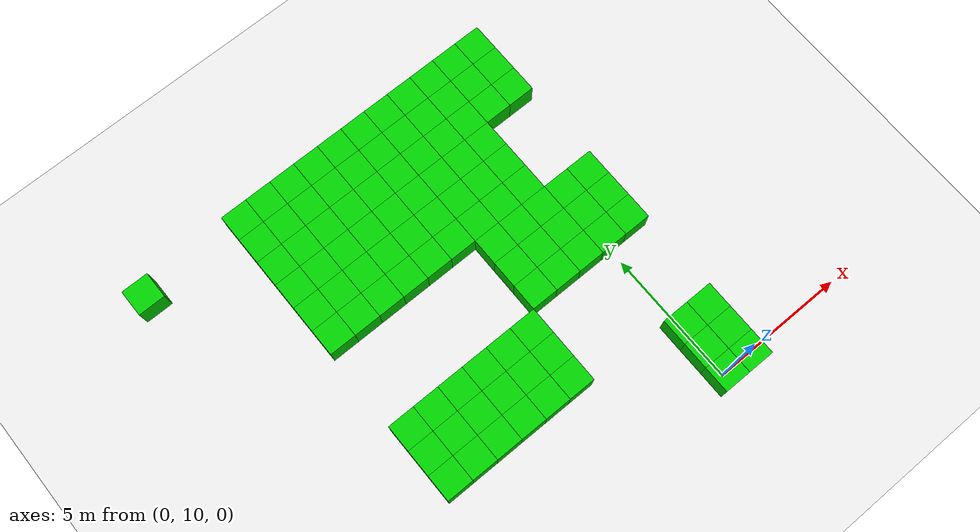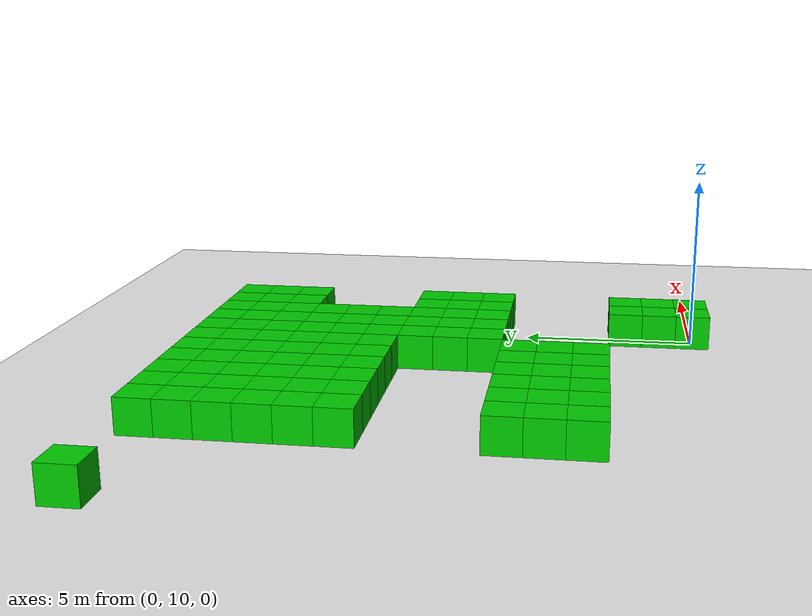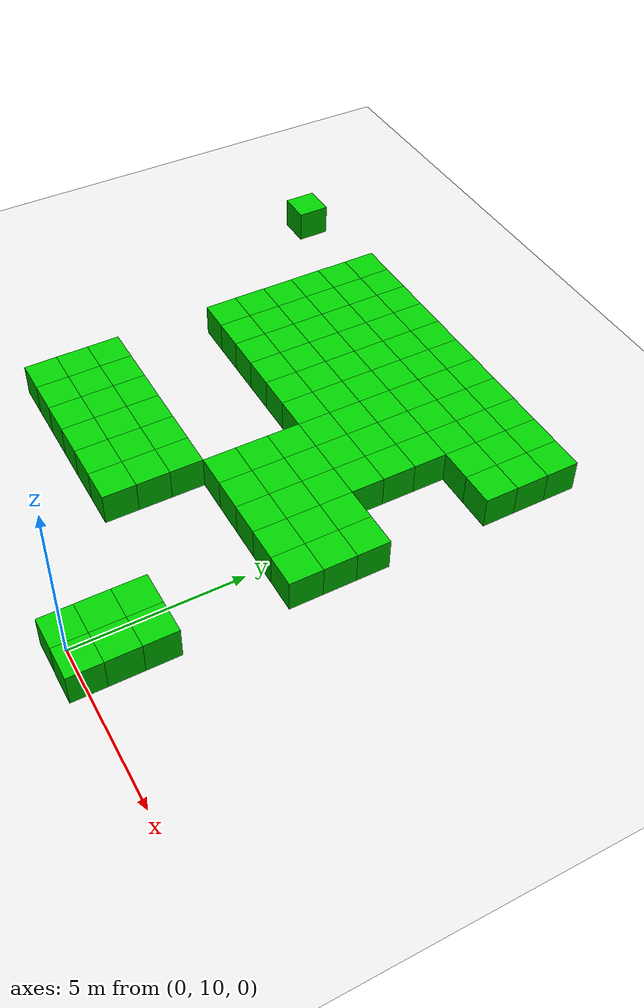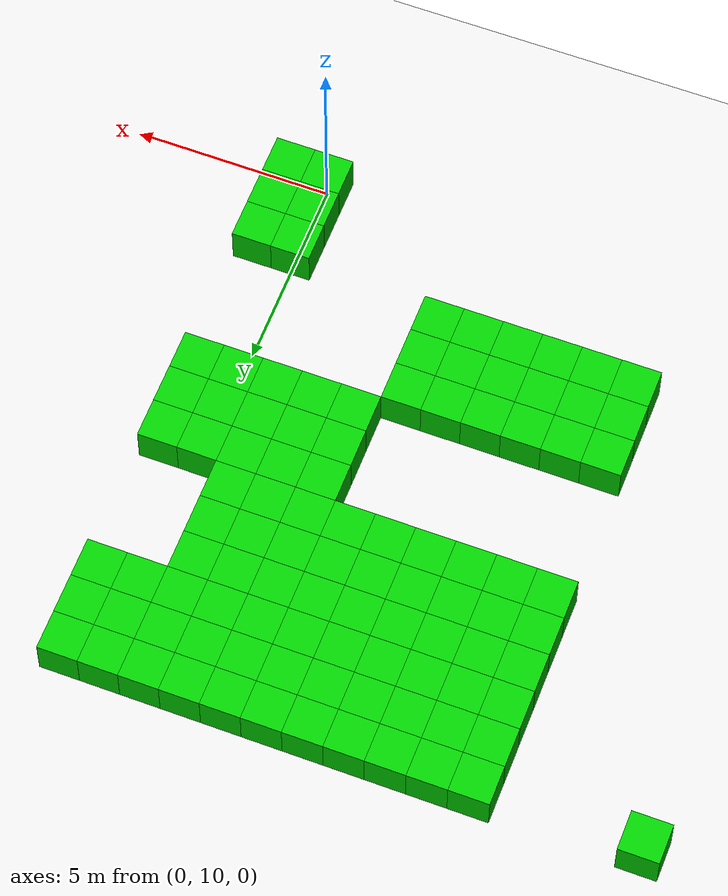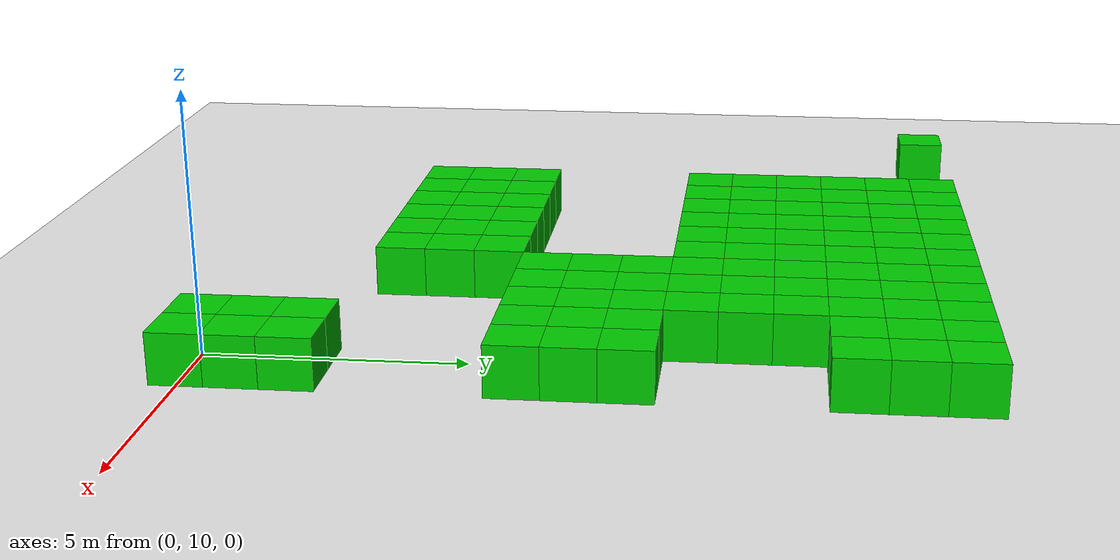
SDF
<sdf version="1.6">
 <world name="generated_maze">
  <model name="ground_plane">
   <static>true</static>
   <link name="link">
    <collision name="collision">
     <geometry><plane><normal>0 0 1</normal><size>100 100</size></plane></geometry>
    </collision>
    <visual name="visual">
     <geometry><plane><normal>0 0 1</normal><size>100 100</size></plane></geometry>
     <material>
      <ambient>0.9 0.9 0.9 1</ambient>
      <diffuse>0.9 0.9 0.9 1</diffuse>
      <specular>0.3 0.3 0.3 1</specular>
     </material>
    </visual>
   </link>
  </model>
  <model name="wall_0_11">
   <static>true</static>
   <pose>-13 24 0.5 0 0 0</pose>
   <link name="link">
    <collision name="collision"><geometry><box><size>1 1 1</size></box></geometry></collision>
    <visual name="visual">
     <geometry><box><size>1 1 1</size></box></geometry>
     <material>
      <ambient>0.0 0.8 0.0 1</ambient>
      <diffuse>0.0 0.8 0.0 1</diffuse>
      <specular>0.1 0.1 0.1 1</specular>
     </material>
    </visual>
   </link>
  </model>
  <model name="wall_0_15">
   <static>true</static>
   <pose>-9 24 0.5 0 0 0</pose>
   <link name="link">
    <collision name="collision"><geometry><box><size>1 1 1</size></box></geometry></collision>
    <visual name="visual">
     <geometry><box><size>1 1 1</size></box></geometry>
     <material>
      <ambient>0.0 0.8 0.0 1</ambient>
      <diffuse>0.0 0.8 0.0 1</diffuse>
      <specular>0.1 0.1 0.1 1</specular>
     </material>
    </visual>
   </link>
  </model>
  <model name="wall_0_16">
   <static>true</static>
   <pose>-8 24 0.5 0 0 0</pose>
   <link name="link">
    <collision name="collision"><geometry><box><size>1 1 1</size></box></geometry></collision>
    <visual name="visual">
     <geometry><box><size>1 1 1</size></box></geometry>
     <material>
      <ambient>0.0 0.8 0.0 1</ambient>
      <diffuse>0.0 0.8 0.0 1</diffuse>
      <specular>0.1 0.1 0.1 1</specular>
     </material>
    </visual>
   </link>
  </model>
  <model name="wall_0_17">
   <static>true</static>
   <pose>-7 24 0.5 0 0 0</pose>
   <link name="link">
    <collision name="collision"><geometry><box><size>1 1 1</size></box></geometry></collision>
    <visual name="visual">
     <geometry><box><size>1 1 1</size></box></geometry>
     <material>
      <ambient>0.0 0.8 0.0 1</ambient>
      <diffuse>0.0 0.8 0.0 1</diffuse>
      <specular>0.1 0.1 0.1 1</specular>
     </material>
    </visual>
   </link>
  </model>
  <model name="wall_0_18">
   <static>true</static>
   <pose>-6 24 0.5 0 0 0</pose>
   <link name="link">
    <collision name="collision"><geometry><box><size>1 1 1</size></box></geometry></collision>
    <visual name="visual">
     <geometry><box><size>1 1 1</size></box></geometry>
     <material>
      <ambient>0.0 0.8 0.0 1</ambient>
      <diffuse>0.0 0.8 0.0 1</diffuse>
      <specular>0.1 0.1 0.1 1</specular>
     </material>
    </visual>
   </link>
  </model>
  <model name="wall_0_19">
   <static>true</static>
   <pose>-5 24 0.5 0 0 0</pose>
   <link name="link">
    <collision name="collision"><geometry><box><size>1 1 1</size></box></geometry></collision>
    <visual name="visual">
     <geometry><box><size>1 1 1</size></box></geometry>
     <material>
      <ambient>0.0 0.8 0.0 1</ambient>
      <diffuse>0.0 0.8 0.0 1</diffuse>
      <specular>0.1 0.1 0.1 1</specular>
     </material>
    </visual>
   </link>
  </model>
  <model name="wall_0_20">
   <static>true</static>
   <pose>-4 24 0.5 0 0 0</pose>
   <link name="link">
    <collision name="collision"><geometry><box><size>1 1 1</size></box></geometry></collision>
    <visual name="visual">
     <geometry><box><size>1 1 1</size></box></geometry>
     <material>
      <ambient>0.0 0.8 0.0 1</ambient>
      <diffuse>0.0 0.8 0.0 1</diffuse>
      <specular>0.1 0.1 0.1 1</specular>
     </material>
    </visual>
   </link>
  </model>
  <model name="wall_0_21">
   <static>true</static>
   <pose>-3 24 0.5 0 0 0</pose>
   <link name="link">
    <collision name="collision"><geometry><box><size>1 1 1</size></box></geometry></collision>
    <visual name="visual">
     <geometry><box><size>1 1 1</size></box></geometry>
     <material>
      <ambient>0.0 0.8 0.0 1</ambient>
      <diffuse>0.0 0.8 0.0 1</diffuse>
      <specular>0.1 0.1 0.1 1</specular>
     </material>
    </visual>
   </link>
  </model>
  <model name="wall_0_22">
   <static>true</static>
   <pose>-2 24 0.5 0 0 0</pose>
   <link name="link">
    <collision name="collision"><geometry><box><size>1 1 1</size></box></geometry></collision>
    <visual name="visual">
     <geometry><box><size>1 1 1</size></box></geometry>
     <material>
      <ambient>0.0 0.8 0.0 1</ambient>
      <diffuse>0.0 0.8 0.0 1</diffuse>
      <specular>0.1 0.1 0.1 1</specular>
     </material>
    </visual>
   </link>
  </model>
  <model name="wall_0_23">
   <static>true</static>
   <pose>-1 24 0.5 0 0 0</pose>
   <link name="link">
    <collision name="collision"><geometry><box><size>1 1 1</size></box></geometry></collision>
    <visual name="visual">
     <geometry><box><size>1 1 1</size></box></geometry>
     <material>
      <ambient>0.0 0.8 0.0 1</ambient>
      <diffuse>0.0 0.8 0.0 1</diffuse>
      <specular>0.1 0.1 0.1 1</specular>
     </material>
    </visual>
   </link>
  </model>
  <model name="wall_0_24">
   <static>true</static>
   <pose>0 24 0.5 0 0 0</pose>
   <link name="link">
    <collision name="collision"><geometry><box><size>1 1 1</size></box></geometry></collision>
    <visual name="visual">
     <geometry><box><size>1 1 1</size></box></geometry>
     <material>
      <ambient>0.0 0.8 0.0 1</ambient>
      <diffuse>0.0 0.8 0.0 1</diffuse>
      <specular>0.1 0.1 0.1 1</specular>
     </material>
    </visual>
   </link>
  </model>
  <model name="wall_0_25">
   <static>true</static>
   <pose>1 24 0.5 0 0 0</pose>
   <link name="link">
    <collision name="collision"><geometry><box><size>1 1 1</size></box></geometry></collision>
    <visual name="visual">
     <geometry><box><size>1 1 1</size></box></geometry>
     <material>
      <ambient>0.0 0.8 0.0 1</ambient>
      <diffuse>0.0 0.8 0.0 1</diffuse>
      <specular>0.1 0.1 0.1 1</specular>
     </material>
    </visual>
   </link>
  </model>
  <model name="wall_1_15">
   <static>true</static>
   <pose>-9 23 0.5 0 0 0</pose>
   <link name="link">
    <collision name="collision"><geometry><box><size>1 1 1</size></box></geometry></collision>
    <visual name="visual">
     <geometry><box><size>1 1 1</size></box></geometry>
     <material>
      <ambient>0.0 0.8 0.0 1</ambient>
      <diffuse>0.0 0.8 0.0 1</diffuse>
      <specular>0.1 0.1 0.1 1</specular>
     </material>
    </visual>
   </link>
  </model>
  <model name="wall_1_16">
   <static>true</static>
   <pose>-8 23 0.5 0 0 0</pose>
   <link name="link">
    <collision name="collision"><geometry><box><size>1 1 1</size></box></geometry></collision>
    <visual name="visual">
     <geometry><box><size>1 1 1</size></box></geometry>
     <material>
      <ambient>0.0 0.8 0.0 1</ambient>
      <diffuse>0.0 0.8 0.0 1</diffuse>
      <specular>0.1 0.1 0.1 1</specular>
     </material>
    </visual>
   </link>
  </model>
  <model name="wall_1_17">
   <static>true</static>
   <pose>-7 23 0.5 0 0 0</pose>
   <link name="link">
    <collision name="collision"><geometry><box><size>1 1 1</size></box></geometry></collision>
    <visual name="visual">
     <geometry><box><size>1 1 1</size></box></geometry>
     <material>
      <ambient>0.0 0.8 0.0 1</ambient>
      <diffuse>0.0 0.8 0.0 1</diffuse>
      <specular>0.1 0.1 0.1 1</specular>
     </material>
    </visual>
   </link>
  </model>
  <model name="wall_1_18">
   <static>true</static>
   <pose>-6 23 0.5 0 0 0</pose>
   <link name="link">
    <collision name="collision"><geometry><box><size>1 1 1</size></box></geometry></collision>
    <visual name="visual">
     <geometry><box><size>1 1 1</size></box></geometry>
     <material>
      <ambient>0.0 0.8 0.0 1</ambient>
      <diffuse>0.0 0.8 0.0 1</diffuse>
      <specular>0.1 0.1 0.1 1</specular>
     </material>
    </visual>
   </link>
  </model>
  <model name="wall_1_19">
   <static>true</static>
   <pose>-5 23 0.5 0 0 0</pose>
   <link name="link">
    <collision name="collision"><geometry><box><size>1 1 1</size></box></geometry></collision>
    <visual name="visual">
     <geometry><box><size>1 1 1</size></box></geometry>
     <material>
      <ambient>0.0 0.8 0.0 1</ambient>
      <diffuse>0.0 0.8 0.0 1</diffuse>
      <specular>0.1 0.1 0.1 1</specular>
     </material>
    </visual>
   </link>
  </model>
  <model name="wall_1_20">
   <static>true</static>
   <pose>-4 23 0.5 0 0 0</pose>
   <link name="link">
    <collision name="collision"><geometry><box><size>1 1 1</size></box></geometry></collision>
    <visual name="visual">
     <geometry><box><size>1 1 1</size></box></geometry>
     <material>
      <ambient>0.0 0.8 0.0 1</ambient>
      <diffuse>0.0 0.8 0.0 1</diffuse>
      <specular>0.1 0.1 0.1 1</specular>
     </material>
    </visual>
   </link>
  </model>
  <model name="wall_1_21">
   <static>true</static>
   <pose>-3 23 0.5 0 0 0</pose>
   <link name="link">
    <collision name="collision"><geometry><box><size>1 1 1</size></box></geometry></collision>
    <visual name="visual">
     <geometry><box><size>1 1 1</size></box></geometry>
     <material>
      <ambient>0.0 0.8 0.0 1</ambient>
      <diffuse>0.0 0.8 0.0 1</diffuse>
      <specular>0.1 0.1 0.1 1</specular>
     </material>
    </visual>
   </link>
  </model>
  <model name="wall_1_22">
   <static>true</static>
   <pose>-2 23 0.5 0 0 0</pose>
   <link name="link">
    <collision name="collision"><geometry><box><size>1 1 1</size></box></geometry></collision>
    <visual name="visual">
     <geometry><box><size>1 1 1</size></box></geometry>
     <material>
      <ambient>0.0 0.8 0.0 1</ambient>
      <diffuse>0.0 0.8 0.0 1</diffuse>
      <specular>0.1 0.1 0.1 1</specular>
     </material>
    </visual>
   </link>
  </model>
  <model name="wall_1_23">
   <static>true</static>
   <pose>-1 23 0.5 0 0 0</pose>
   <link name="link">
    <collision name="collision"><geometry><box><size>1 1 1</size></box></geometry></collision>
    <visual name="visual">
     <geometry><box><size>1 1 1</size></box></geometry>
     <material>
      <ambient>0.0 0.8 0.0 1</ambient>
      <diffuse>0.0 0.8 0.0 1</diffuse>
      <specular>0.1 0.1 0.1 1</specular>
     </material>
    </visual>
   </link>
  </model>
  <model name="wall_1_24">
   <static>true</static>
   <pose>0 23 0.5 0 0 0</pose>
   <link name="link">
    <collision name="collision"><geometry><box><size>1 1 1</size></box></geometry></collision>
    <visual name="visual">
     <geometry><box><size>1 1 1</size></box></geometry>
     <material>
      <ambient>0.0 0.8 0.0 1</ambient>
      <diffuse>0.0 0.8 0.0 1</diffuse>
      <specular>0.1 0.1 0.1 1</specular>
     </material>
    </visual>
   </link>
  </model>
  <model name="wall_1_25">
   <static>true</static>
   <pose>1 23 0.5 0 0 0</pose>
   <link name="link">
    <collision name="collision"><geometry><box><size>1 1 1</size></box></geometry></collision>
    <visual name="visual">
     <geometry><box><size>1 1 1</size></box></geometry>
     <material>
      <ambient>0.0 0.8 0.0 1</ambient>
      <diffuse>0.0 0.8 0.0 1</diffuse>
      <specular>0.1 0.1 0.1 1</specular>
     </material>
    </visual>
   </link>
  </model>
  <model name="wall_2_15">
   <static>true</static>
   <pose>-9 22 0.5 0 0 0</pose>
   <link name="link">
    <collision name="collision"><geometry><box><size>1 1 1</size></box></geometry></collision>
    <visual name="visual">
     <geometry><box><size>1 1 1</size></box></geometry>
     <material>
      <ambient>0.0 0.8 0.0 1</ambient>
      <diffuse>0.0 0.8 0.0 1</diffuse>
      <specular>0.1 0.1 0.1 1</specular>
     </material>
    </visual>
   </link>
  </model>
  <model name="wall_2_16">
   <static>true</static>
   <pose>-8 22 0.5 0 0 0</pose>
   <link name="link">
    <collision name="collision"><geometry><box><size>1 1 1</size></box></geometry></collision>
    <visual name="visual">
     <geometry><box><size>1 1 1</size></box></geometry>
     <material>
      <ambient>0.0 0.8 0.0 1</ambient>
      <diffuse>0.0 0.8 0.0 1</diffuse>
      <specular>0.1 0.1 0.1 1</specular>
     </material>
    </visual>
   </link>
  </model>
  <model name="wall_2_17">
   <static>true</static>
   <pose>-7 22 0.5 0 0 0</pose>
   <link name="link">
    <collision name="collision"><geometry><box><size>1 1 1</size></box></geometry></collision>
    <visual name="visual">
     <geometry><box><size>1 1 1</size></box></geometry>
     <material>
      <ambient>0.0 0.8 0.0 1</ambient>
      <diffuse>0.0 0.8 0.0 1</diffuse>
      <specular>0.1 0.1 0.1 1</specular>
     </material>
    </visual>
   </link>
  </model>
  <model name="wall_2_18">
   <static>true</static>
   <pose>-6 22 0.5 0 0 0</pose>
   <link name="link">
    <collision name="collision"><geometry><box><size>1 1 1</size></box></geometry></collision>
    <visual name="visual">
     <geometry><box><size>1 1 1</size></box></geometry>
     <material>
      <ambient>0.0 0.8 0.0 1</ambient>
      <diffuse>0.0 0.8 0.0 1</diffuse>
      <specular>0.1 0.1 0.1 1</specular>
     </material>
    </visual>
   </link>
  </model>
  <model name="wall_2_19">
   <static>true</static>
   <pose>-5 22 0.5 0 0 0</pose>
   <link name="link">
    <collision name="collision"><geometry><box><size>1 1 1</size></box></geometry></collision>
    <visual name="visual">
     <geometry><box><size>1 1 1</size></box></geometry>
     <material>
      <ambient>0.0 0.8 0.0 1</ambient>
      <diffuse>0.0 0.8 0.0 1</diffuse>
      <specular>0.1 0.1 0.1 1</specular>
     </material>
    </visual>
   </link>
  </model>
  <model name="wall_2_20">
   <static>true</static>
   <pose>-4 22 0.5 0 0 0</pose>
   <link name="link">
    <collision name="collision"><geometry><box><size>1 1 1</size></box></geometry></collision>
    <visual name="visual">
     <geometry><box><size>1 1 1</size></box></geometry>
     <material>
      <ambient>0.0 0.8 0.0 1</ambient>
      <diffuse>0.0 0.8 0.0 1</diffuse>
      <specular>0.1 0.1 0.1 1</specular>
     </material>
    </visual>
   </link>
  </model>
  <model name="wall_2_21">
   <static>true</static>
   <pose>-3 22 0.5 0 0 0</pose>
   <link name="link">
    <collision name="collision"><geometry><box><size>1 1 1</size></box></geometry></collision>
    <visual name="visual">
     <geometry><box><size>1 1 1</size></box></geometry>
     <material>
      <ambient>0.0 0.8 0.0 1</ambient>
      <diffuse>0.0 0.8 0.0 1</diffuse>
      <specular>0.1 0.1 0.1 1</specular>
     </material>
    </visual>
   </link>
  </model>
  <model name="wall_2_22">
   <static>true</static>
   <pose>-2 22 0.5 0 0 0</pose>
   <link name="link">
    <collision name="collision"><geometry><box><size>1 1 1</size></box></geometry></collision>
    <visual name="visual">
     <geometry><box><size>1 1 1</size></box></geometry>
     <material>
      <ambient>0.0 0.8 0.0 1</ambient>
      <diffuse>0.0 0.8 0.0 1</diffuse>
      <specular>0.1 0.1 0.1 1</specular>
     </material>
    </visual>
   </link>
  </model>
  <model name="wall_2_23">
   <static>true</static>
   <pose>-1 22 0.5 0 0 0</pose>
   <link name="link">
    <collision name="collision"><geometry><box><size>1 1 1</size></box></geometry></collision>
    <visual name="visual">
     <geometry><box><size>1 1 1</size></box></geometry>
     <material>
      <ambient>0.0 0.8 0.0 1</ambient>
      <diffuse>0.0 0.8 0.0 1</diffuse>
      <specular>0.1 0.1 0.1 1</specular>
     </material>
    </visual>
   </link>
  </model>
  <model name="wall_2_24">
   <static>true</static>
   <pose>0 22 0.5 0 0 0</pose>
   <link name="link">
    <collision name="collision"><geometry><box><size>1 1 1</size></box></geometry></collision>
    <visual name="visual">
     <geometry><box><size>1 1 1</size></box></geometry>
     <material>
      <ambient>0.0 0.8 0.0 1</ambient>
      <diffuse>0.0 0.8 0.0 1</diffuse>
      <specular>0.1 0.1 0.1 1</specular>
     </material>
    </visual>
   </link>
  </model>
  <model name="wall_2_25">
   <static>true</static>
   <pose>1 22 0.5 0 0 0</pose>
   <link name="link">
    <collision name="collision"><geometry><box><size>1 1 1</size></box></geometry></collision>
    <visual name="visual">
     <geometry><box><size>1 1 1</size></box></geometry>
     <material>
      <ambient>0.0 0.8 0.0 1</ambient>
      <diffuse>0.0 0.8 0.0 1</diffuse>
      <specular>0.1 0.1 0.1 1</specular>
     </material>
    </visual>
   </link>
  </model>
  <model name="wall_3_15">
   <static>true</static>
   <pose>-9 21 0.5 0 0 0</pose>
   <link name="link">
    <collision name="collision"><geometry><box><size>1 1 1</size></box></geometry></collision>
    <visual name="visual">
     <geometry><box><size>1 1 1</size></box></geometry>
     <material>
      <ambient>0.0 0.8 0.0 1</ambient>
      <diffuse>0.0 0.8 0.0 1</diffuse>
      <specular>0.1 0.1 0.1 1</specular>
     </material>
    </visual>
   </link>
  </model>
  <model name="wall_3_16">
   <static>true</static>
   <pose>-8 21 0.5 0 0 0</pose>
   <link name="link">
    <collision name="collision"><geometry><box><size>1 1 1</size></box></geometry></collision>
    <visual name="visual">
     <geometry><box><size>1 1 1</size></box></geometry>
     <material>
      <ambient>0.0 0.8 0.0 1</ambient>
      <diffuse>0.0 0.8 0.0 1</diffuse>
      <specular>0.1 0.1 0.1 1</specular>
     </material>
    </visual>
   </link>
  </model>
  <model name="wall_3_17">
   <static>true</static>
   <pose>-7 21 0.5 0 0 0</pose>
   <link name="link">
    <collision name="collision"><geometry><box><size>1 1 1</size></box></geometry></collision>
    <visual name="visual">
     <geometry><box><size>1 1 1</size></box></geometry>
     <material>
      <ambient>0.0 0.8 0.0 1</ambient>
      <diffuse>0.0 0.8 0.0 1</diffuse>
      <specular>0.1 0.1 0.1 1</specular>
     </material>
    </visual>
   </link>
  </model>
  <model name="wall_3_18">
   <static>true</static>
   <pose>-6 21 0.5 0 0 0</pose>
   <link name="link">
    <collision name="collision"><geometry><box><size>1 1 1</size></box></geometry></collision>
    <visual name="visual">
     <geometry><box><size>1 1 1</size></box></geometry>
     <material>
      <ambient>0.0 0.8 0.0 1</ambient>
      <diffuse>0.0 0.8 0.0 1</diffuse>
      <specular>0.1 0.1 0.1 1</specular>
     </material>
    </visual>
   </link>
  </model>
  <model name="wall_3_19">
   <static>true</static>
   <pose>-5 21 0.5 0 0 0</pose>
   <link name="link">
    <collision name="collision"><geometry><box><size>1 1 1</size></box></geometry></collision>
    <visual name="visual">
     <geometry><box><size>1 1 1</size></box></geometry>
     <material>
      <ambient>0.0 0.8 0.0 1</ambient>
      <diffuse>0.0 0.8 0.0 1</diffuse>
      <specular>0.1 0.1 0.1 1</specular>
     </material>
    </visual>
   </link>
  </model>
  <model name="wall_3_20">
   <static>true</static>
   <pose>-4 21 0.5 0 0 0</pose>
   <link name="link">
    <collision name="collision"><geometry><box><size>1 1 1</size></box></geometry></collision>
    <visual name="visual">
     <geometry><box><size>1 1 1</size></box></geometry>
     <material>
      <ambient>0.0 0.8 0.0 1</ambient>
      <diffuse>0.0 0.8 0.0 1</diffuse>
      <specular>0.1 0.1 0.1 1</specular>
     </material>
    </visual>
   </link>
  </model>
  <model name="wall_3_21">
   <static>true</static>
   <pose>-3 21 0.5 0 0 0</pose>
   <link name="link">
    <collision name="collision"><geometry><box><size>1 1 1</size></box></geometry></collision>
    <visual name="visual">
     <geometry><box><size>1 1 1</size></box></geometry>
     <material>
      <ambient>0.0 0.8 0.0 1</ambient>
      <diffuse>0.0 0.8 0.0 1</diffuse>
      <specular>0.1 0.1 0.1 1</specular>
     </material>
    </visual>
   </link>
  </model>
  <model name="wall_3_22">
   <static>true</static>
   <pose>-2 21 0.5 0 0 0</pose>
   <link name="link">
    <collision name="collision"><geometry><box><size>1 1 1</size></box></geometry></collision>
    <visual name="visual">
     <geometry><box><size>1 1 1</size></box></geometry>
     <material>
      <ambient>0.0 0.8 0.0 1</ambient>
      <diffuse>0.0 0.8 0.0 1</diffuse>
      <specular>0.1 0.1 0.1 1</specular>
     </material>
    </visual>
   </link>
  </model>
  <model name="wall_3_23">
   <static>true</static>
   <pose>-1 21 0.5 0 0 0</pose>
   <link name="link">
    <collision name="collision"><geometry><box><size>1 1 1</size></box></geometry></collision>
    <visual name="visual">
     <geometry><box><size>1 1 1</size></box></geometry>
     <material>
      <ambient>0.0 0.8 0.0 1</ambient>
      <diffuse>0.0 0.8 0.0 1</diffuse>
      <specular>0.1 0.1 0.1 1</specular>
     </material>
    </visual>
   </link>
  </model>
  <model name="wall_4_15">
   <static>true</static>
   <pose>-9 20 0.5 0 0 0</pose>
   <link name="link">
    <collision name="collision"><geometry><box><size>1 1 1</size></box></geometry></collision>
    <visual name="visual">
     <geometry><box><size>1 1 1</size></box></geometry>
     <material>
      <ambient>0.0 0.8 0.0 1</ambient>
      <diffuse>0.0 0.8 0.0 1</diffuse>
      <specular>0.1 0.1 0.1 1</specular>
     </material>
    </visual>
   </link>
  </model>
  <model name="wall_4_16">
   <static>true</static>
   <pose>-8 20 0.5 0 0 0</pose>
   <link name="link">
    <collision name="collision"><geometry><box><size>1 1 1</size></box></geometry></collision>
    <visual name="visual">
     <geometry><box><size>1 1 1</size></box></geometry>
     <material>
      <ambient>0.0 0.8 0.0 1</ambient>
      <diffuse>0.0 0.8 0.0 1</diffuse>
      <specular>0.1 0.1 0.1 1</specular>
     </material>
    </visual>
   </link>
  </model>
  <model name="wall_4_17">
   <static>true</static>
   <pose>-7 20 0.5 0 0 0</pose>
   <link name="link">
    <collision name="collision"><geometry><box><size>1 1 1</size></box></geometry></collision>
    <visual name="visual">
     <geometry><box><size>1 1 1</size></box></geometry>
     <material>
      <ambient>0.0 0.8 0.0 1</ambient>
      <diffuse>0.0 0.8 0.0 1</diffuse>
      <specular>0.1 0.1 0.1 1</specular>
     </material>
    </visual>
   </link>
  </model>
  <model name="wall_4_18">
   <static>true</static>
   <pose>-6 20 0.5 0 0 0</pose>
   <link name="link">
    <collision name="collision"><geometry><box><size>1 1 1</size></box></geometry></collision>
    <visual name="visual">
     <geometry><box><size>1 1 1</size></box></geometry>
     <material>
      <ambient>0.0 0.8 0.0 1</ambient>
      <diffuse>0.0 0.8 0.0 1</diffuse>
      <specular>0.1 0.1 0.1 1</specular>
     </material>
    </visual>
   </link>
  </model>
  <model name="wall_4_19">
   <static>true</static>
   <pose>-5 20 0.5 0 0 0</pose>
   <link name="link">
    <collision name="collision"><geometry><box><size>1 1 1</size></box></geometry></collision>
    <visual name="visual">
     <geometry><box><size>1 1 1</size></box></geometry>
     <material>
      <ambient>0.0 0.8 0.0 1</ambient>
      <diffuse>0.0 0.8 0.0 1</diffuse>
      <specular>0.1 0.1 0.1 1</specular>
     </material>
    </visual>
   </link>
  </model>
  <model name="wall_4_20">
   <static>true</static>
   <pose>-4 20 0.5 0 0 0</pose>
   <link name="link">
    <collision name="collision"><geometry><box><size>1 1 1</size></box></geometry></collision>
    <visual name="visual">
     <geometry><box><size>1 1 1</size></box></geometry>
     <material>
      <ambient>0.0 0.8 0.0 1</ambient>
      <diffuse>0.0 0.8 0.0 1</diffuse>
      <specular>0.1 0.1 0.1 1</specular>
     </material>
    </visual>
   </link>
  </model>
  <model name="wall_4_21">
   <static>true</static>
   <pose>-3 20 0.5 0 0 0</pose>
   <link name="link">
    <collision name="collision"><geometry><box><size>1 1 1</size></box></geometry></collision>
    <visual name="visual">
     <geometry><box><size>1 1 1</size></box></geometry>
     <material>
      <ambient>0.0 0.8 0.0 1</ambient>
      <diffuse>0.0 0.8 0.0 1</diffuse>
      <specular>0.1 0.1 0.1 1</specular>
     </material>
    </visual>
   </link>
  </model>
  <model name="wall_4_22">
   <static>true</static>
   <pose>-2 20 0.5 0 0 0</pose>
   <link name="link">
    <collision name="collision"><geometry><box><size>1 1 1</size></box></geometry></collision>
    <visual name="visual">
     <geometry><box><size>1 1 1</size></box></geometry>
     <material>
      <ambient>0.0 0.8 0.0 1</ambient>
      <diffuse>0.0 0.8 0.0 1</diffuse>
      <specular>0.1 0.1 0.1 1</specular>
     </material>
    </visual>
   </link>
  </model>
  <model name="wall_4_23">
   <static>true</static>
   <pose>-1 20 0.5 0 0 0</pose>
   <link name="link">
    <collision name="collision"><geometry><box><size>1 1 1</size></box></geometry></collision>
    <visual name="visual">
     <geometry><box><size>1 1 1</size></box></geometry>
     <material>
      <ambient>0.0 0.8 0.0 1</ambient>
      <diffuse>0.0 0.8 0.0 1</diffuse>
      <specular>0.1 0.1 0.1 1</specular>
     </material>
    </visual>
   </link>
  </model>
  <model name="wall_5_15">
   <static>true</static>
   <pose>-9 19 0.5 0 0 0</pose>
   <link name="link">
    <collision name="collision"><geometry><box><size>1 1 1</size></box></geometry></collision>
    <visual name="visual">
     <geometry><box><size>1 1 1</size></box></geometry>
     <material>
      <ambient>0.0 0.8 0.0 1</ambient>
      <diffuse>0.0 0.8 0.0 1</diffuse>
      <specular>0.1 0.1 0.1 1</specular>
     </material>
    </visual>
   </link>
  </model>
  <model name="wall_5_16">
   <static>true</static>
   <pose>-8 19 0.5 0 0 0</pose>
   <link name="link">
    <collision name="collision"><geometry><box><size>1 1 1</size></box></geometry></collision>
    <visual name="visual">
     <geometry><box><size>1 1 1</size></box></geometry>
     <material>
      <ambient>0.0 0.8 0.0 1</ambient>
      <diffuse>0.0 0.8 0.0 1</diffuse>
      <specular>0.1 0.1 0.1 1</specular>
     </material>
    </visual>
   </link>
  </model>
  <model name="wall_5_17">
   <static>true</static>
   <pose>-7 19 0.5 0 0 0</pose>
   <link name="link">
    <collision name="collision"><geometry><box><size>1 1 1</size></box></geometry></collision>
    <visual name="visual">
     <geometry><box><size>1 1 1</size></box></geometry>
     <material>
      <ambient>0.0 0.8 0.0 1</ambient>
      <diffuse>0.0 0.8 0.0 1</diffuse>
      <specular>0.1 0.1 0.1 1</specular>
     </material>
    </visual>
   </link>
  </model>
  <model name="wall_5_18">
   <static>true</static>
   <pose>-6 19 0.5 0 0 0</pose>
   <link name="link">
    <collision name="collision"><geometry><box><size>1 1 1</size></box></geometry></collision>
    <visual name="visual">
     <geometry><box><size>1 1 1</size></box></geometry>
     <material>
      <ambient>0.0 0.8 0.0 1</ambient>
      <diffuse>0.0 0.8 0.0 1</diffuse>
      <specular>0.1 0.1 0.1 1</specular>
     </material>
    </visual>
   </link>
  </model>
  <model name="wall_5_19">
   <static>true</static>
   <pose>-5 19 0.5 0 0 0</pose>
   <link name="link">
    <collision name="collision"><geometry><box><size>1 1 1</size></box></geometry></collision>
    <visual name="visual">
     <geometry><box><size>1 1 1</size></box></geometry>
     <material>
      <ambient>0.0 0.8 0.0 1</ambient>
      <diffuse>0.0 0.8 0.0 1</diffuse>
      <specular>0.1 0.1 0.1 1</specular>
     </material>
    </visual>
   </link>
  </model>
  <model name="wall_5_20">
   <static>true</static>
   <pose>-4 19 0.5 0 0 0</pose>
   <link name="link">
    <collision name="collision"><geometry><box><size>1 1 1</size></box></geometry></collision>
    <visual name="visual">
     <geometry><box><size>1 1 1</size></box></geometry>
     <material>
      <ambient>0.0 0.8 0.0 1</ambient>
      <diffuse>0.0 0.8 0.0 1</diffuse>
      <specular>0.1 0.1 0.1 1</specular>
     </material>
    </visual>
   </link>
  </model>
  <model name="wall_5_21">
   <static>true</static>
   <pose>-3 19 0.5 0 0 0</pose>
   <link name="link">
    <collision name="collision"><geometry><box><size>1 1 1</size></box></geometry></collision>
    <visual name="visual">
     <geometry><box><size>1 1 1</size></box></geometry>
     <material>
      <ambient>0.0 0.8 0.0 1</ambient>
      <diffuse>0.0 0.8 0.0 1</diffuse>
      <specular>0.1 0.1 0.1 1</specular>
     </material>
    </visual>
   </link>
  </model>
  <model name="wall_5_22">
   <static>true</static>
   <pose>-2 19 0.5 0 0 0</pose>
   <link name="link">
    <collision name="collision"><geometry><box><size>1 1 1</size></box></geometry></collision>
    <visual name="visual">
     <geometry><box><size>1 1 1</size></box></geometry>
     <material>
      <ambient>0.0 0.8 0.0 1</ambient>
      <diffuse>0.0 0.8 0.0 1</diffuse>
      <specular>0.1 0.1 0.1 1</specular>
     </material>
    </visual>
   </link>
  </model>
  <model name="wall_5_23">
   <static>true</static>
   <pose>-1 19 0.5 0 0 0</pose>
   <link name="link">
    <collision name="collision"><geometry><box><size>1 1 1</size></box></geometry></collision>
    <visual name="visual">
     <geometry><box><size>1 1 1</size></box></geometry>
     <material>
      <ambient>0.0 0.8 0.0 1</ambient>
      <diffuse>0.0 0.8 0.0 1</diffuse>
      <specular>0.1 0.1 0.1 1</specular>
     </material>
    </visual>
   </link>
  </model>
  <model name="wall_6_21">
   <static>true</static>
   <pose>-3 18 0.5 0 0 0</pose>
   <link name="link">
    <collision name="collision"><geometry><box><size>1 1 1</size></box></geometry></collision>
    <visual name="visual">
     <geometry><box><size>1 1 1</size></box></geometry>
     <material>
      <ambient>0.0 0.8 0.0 1</ambient>
      <diffuse>0.0 0.8 0.0 1</diffuse>
      <specular>0.1 0.1 0.1 1</specular>
     </material>
    </visual>
   </link>
  </model>
  <model name="wall_6_22">
   <static>true</static>
   <pose>-2 18 0.5 0 0 0</pose>
   <link name="link">
    <collision name="collision"><geometry><box><size>1 1 1</size></box></geometry></collision>
    <visual name="visual">
     <geometry><box><size>1 1 1</size></box></geometry>
     <material>
      <ambient>0.0 0.8 0.0 1</ambient>
      <diffuse>0.0 0.8 0.0 1</diffuse>
      <specular>0.1 0.1 0.1 1</specular>
     </material>
    </visual>
   </link>
  </model>
  <model name="wall_6_23">
   <static>true</static>
   <pose>-1 18 0.5 0 0 0</pose>
   <link name="link">
    <collision name="collision"><geometry><box><size>1 1 1</size></box></geometry></collision>
    <visual name="visual">
     <geometry><box><size>1 1 1</size></box></geometry>
     <material>
      <ambient>0.0 0.8 0.0 1</ambient>
      <diffuse>0.0 0.8 0.0 1</diffuse>
      <specular>0.1 0.1 0.1 1</specular>
     </material>
    </visual>
   </link>
  </model>
  <model name="wall_6_24">
   <static>true</static>
   <pose>0 18 0.5 0 0 0</pose>
   <link name="link">
    <collision name="collision"><geometry><box><size>1 1 1</size></box></geometry></collision>
    <visual name="visual">
     <geometry><box><size>1 1 1</size></box></geometry>
     <material>
      <ambient>0.0 0.8 0.0 1</ambient>
      <diffuse>0.0 0.8 0.0 1</diffuse>
      <specular>0.1 0.1 0.1 1</specular>
     </material>
    </visual>
   </link>
  </model>
  <model name="wall_6_25">
   <static>true</static>
   <pose>1 18 0.5 0 0 0</pose>
   <link name="link">
    <collision name="collision"><geometry><box><size>1 1 1</size></box></geometry></collision>
    <visual name="visual">
     <geometry><box><size>1 1 1</size></box></geometry>
     <material>
      <ambient>0.0 0.8 0.0 1</ambient>
      <diffuse>0.0 0.8 0.0 1</diffuse>
      <specular>0.1 0.1 0.1 1</specular>
     </material>
    </visual>
   </link>
  </model>
  <model name="wall_7_21">
   <static>true</static>
   <pose>-3 17 0.5 0 0 0</pose>
   <link name="link">
    <collision name="collision"><geometry><box><size>1 1 1</size></box></geometry></collision>
    <visual name="visual">
     <geometry><box><size>1 1 1</size></box></geometry>
     <material>
      <ambient>0.0 0.8 0.0 1</ambient>
      <diffuse>0.0 0.8 0.0 1</diffuse>
      <specular>0.1 0.1 0.1 1</specular>
     </material>
    </visual>
   </link>
  </model>
  <model name="wall_7_22">
   <static>true</static>
   <pose>-2 17 0.5 0 0 0</pose>
   <link name="link">
    <collision name="collision"><geometry><box><size>1 1 1</size></box></geometry></collision>
    <visual name="visual">
     <geometry><box><size>1 1 1</size></box></geometry>
     <material>
      <ambient>0.0 0.8 0.0 1</ambient>
      <diffuse>0.0 0.8 0.0 1</diffuse>
      <specular>0.1 0.1 0.1 1</specular>
     </material>
    </visual>
   </link>
  </model>
  <model name="wall_7_23">
   <static>true</static>
   <pose>-1 17 0.5 0 0 0</pose>
   <link name="link">
    <collision name="collision"><geometry><box><size>1 1 1</size></box></geometry></collision>
    <visual name="visual">
     <geometry><box><size>1 1 1</size></box></geometry>
     <material>
      <ambient>0.0 0.8 0.0 1</ambient>
      <diffuse>0.0 0.8 0.0 1</diffuse>
      <specular>0.1 0.1 0.1 1</specular>
     </material>
    </visual>
   </link>
  </model>
  <model name="wall_7_24">
   <static>true</static>
   <pose>0 17 0.5 0 0 0</pose>
   <link name="link">
    <collision name="collision"><geometry><box><size>1 1 1</size></box></geometry></collision>
    <visual name="visual">
     <geometry><box><size>1 1 1</size></box></geometry>
     <material>
      <ambient>0.0 0.8 0.0 1</ambient>
      <diffuse>0.0 0.8 0.0 1</diffuse>
      <specular>0.1 0.1 0.1 1</specular>
     </material>
    </visual>
   </link>
  </model>
  <model name="wall_7_25">
   <static>true</static>
   <pose>1 17 0.5 0 0 0</pose>
   <link name="link">
    <collision name="collision"><geometry><box><size>1 1 1</size></box></geometry></collision>
    <visual name="visual">
     <geometry><box><size>1 1 1</size></box></geometry>
     <material>
      <ambient>0.0 0.8 0.0 1</ambient>
      <diffuse>0.0 0.8 0.0 1</diffuse>
      <specular>0.1 0.1 0.1 1</specular>
     </material>
    </visual>
   </link>
  </model>
  <model name="wall_8_21">
   <static>true</static>
   <pose>-3 16 0.5 0 0 0</pose>
   <link name="link">
    <collision name="collision"><geometry><box><size>1 1 1</size></box></geometry></collision>
    <visual name="visual">
     <geometry><box><size>1 1 1</size></box></geometry>
     <material>
      <ambient>0.0 0.8 0.0 1</ambient>
      <diffuse>0.0 0.8 0.0 1</diffuse>
      <specular>0.1 0.1 0.1 1</specular>
     </material>
    </visual>
   </link>
  </model>
  <model name="wall_8_22">
   <static>true</static>
   <pose>-2 16 0.5 0 0 0</pose>
   <link name="link">
    <collision name="collision"><geometry><box><size>1 1 1</size></box></geometry></collision>
    <visual name="visual">
     <geometry><box><size>1 1 1</size></box></geometry>
     <material>
      <ambient>0.0 0.8 0.0 1</ambient>
      <diffuse>0.0 0.8 0.0 1</diffuse>
      <specular>0.1 0.1 0.1 1</specular>
     </material>
    </visual>
   </link>
  </model>
  <model name="wall_8_23">
   <static>true</static>
   <pose>-1 16 0.5 0 0 0</pose>
   <link name="link">
    <collision name="collision"><geometry><box><size>1 1 1</size></box></geometry></collision>
    <visual name="visual">
     <geometry><box><size>1 1 1</size></box></geometry>
     <material>
      <ambient>0.0 0.8 0.0 1</ambient>
      <diffuse>0.0 0.8 0.0 1</diffuse>
      <specular>0.1 0.1 0.1 1</specular>
     </material>
    </visual>
   </link>
  </model>
  <model name="wall_8_24">
   <static>true</static>
   <pose>0 16 0.5 0 0 0</pose>
   <link name="link">
    <collision name="collision"><geometry><box><size>1 1 1</size></box></geometry></collision>
    <visual name="visual">
     <geometry><box><size>1 1 1</size></box></geometry>
     <material>
      <ambient>0.0 0.8 0.0 1</ambient>
      <diffuse>0.0 0.8 0.0 1</diffuse>
      <specular>0.1 0.1 0.1 1</specular>
     </material>
    </visual>
   </link>
  </model>
  <model name="wall_8_25">
   <static>true</static>
   <pose>1 16 0.5 0 0 0</pose>
   <link name="link">
    <collision name="collision"><geometry><box><size>1 1 1</size></box></geometry></collision>
    <visual name="visual">
     <geometry><box><size>1 1 1</size></box></geometry>
     <material>
      <ambient>0.0 0.8 0.0 1</ambient>
      <diffuse>0.0 0.8 0.0 1</diffuse>
      <specular>0.1 0.1 0.1 1</specular>
     </material>
    </visual>
   </link>
  </model>
  <model name="wall_9_15">
   <static>true</static>
   <pose>-9 15 0.5 0 0 0</pose>
   <link name="link">
    <collision name="collision"><geometry><box><size>1 1 1</size></box></geometry></collision>
    <visual name="visual">
     <geometry><box><size>1 1 1</size></box></geometry>
     <material>
      <ambient>0.0 0.8 0.0 1</ambient>
      <diffuse>0.0 0.8 0.0 1</diffuse>
      <specular>0.1 0.1 0.1 1</specular>
     </material>
    </visual>
   </link>
  </model>
  <model name="wall_9_16">
   <static>true</static>
   <pose>-8 15 0.5 0 0 0</pose>
   <link name="link">
    <collision name="collision"><geometry><box><size>1 1 1</size></box></geometry></collision>
    <visual name="visual">
     <geometry><box><size>1 1 1</size></box></geometry>
     <material>
      <ambient>0.0 0.8 0.0 1</ambient>
      <diffuse>0.0 0.8 0.0 1</diffuse>
      <specular>0.1 0.1 0.1 1</specular>
     </material>
    </visual>
   </link>
  </model>
  <model name="wall_9_17">
   <static>true</static>
   <pose>-7 15 0.5 0 0 0</pose>
   <link name="link">
    <collision name="collision"><geometry><box><size>1 1 1</size></box></geometry></collision>
    <visual name="visual">
     <geometry><box><size>1 1 1</size></box></geometry>
     <material>
      <ambient>0.0 0.8 0.0 1</ambient>
      <diffuse>0.0 0.8 0.0 1</diffuse>
      <specular>0.1 0.1 0.1 1</specular>
     </material>
    </visual>
   </link>
  </model>
  <model name="wall_9_18">
   <static>true</static>
   <pose>-6 15 0.5 0 0 0</pose>
   <link name="link">
    <collision name="collision"><geometry><box><size>1 1 1</size></box></geometry></collision>
    <visual name="visual">
     <geometry><box><size>1 1 1</size></box></geometry>
     <material>
      <ambient>0.0 0.8 0.0 1</ambient>
      <diffuse>0.0 0.8 0.0 1</diffuse>
      <specular>0.1 0.1 0.1 1</specular>
     </material>
    </visual>
   </link>
  </model>
  <model name="wall_9_19">
   <static>true</static>
   <pose>-5 15 0.5 0 0 0</pose>
   <link name="link">
    <collision name="collision"><geometry><box><size>1 1 1</size></box></geometry></collision>
    <visual name="visual">
     <geometry><box><size>1 1 1</size></box></geometry>
     <material>
      <ambient>0.0 0.8 0.0 1</ambient>
      <diffuse>0.0 0.8 0.0 1</diffuse>
      <specular>0.1 0.1 0.1 1</specular>
     </material>
    </visual>
   </link>
  </model>
  <model name="wall_9_20">
   <static>true</static>
   <pose>-4 15 0.5 0 0 0</pose>
   <link name="link">
    <collision name="collision"><geometry><box><size>1 1 1</size></box></geometry></collision>
    <visual name="visual">
     <geometry><box><size>1 1 1</size></box></geometry>
     <material>
      <ambient>0.0 0.8 0.0 1</ambient>
      <diffuse>0.0 0.8 0.0 1</diffuse>
      <specular>0.1 0.1 0.1 1</specular>
     </material>
    </visual>
   </link>
  </model>
  <model name="wall_10_15">
   <static>true</static>
   <pose>-9 14 0.5 0 0 0</pose>
   <link name="link">
    <collision name="collision"><geometry><box><size>1 1 1</size></box></geometry></collision>
    <visual name="visual">
     <geometry><box><size>1 1 1</size></box></geometry>
     <material>
      <ambient>0.0 0.8 0.0 1</ambient>
      <diffuse>0.0 0.8 0.0 1</diffuse>
      <specular>0.1 0.1 0.1 1</specular>
     </material>
    </visual>
   </link>
  </model>
  <model name="wall_10_16">
   <static>true</static>
   <pose>-8 14 0.5 0 0 0</pose>
   <link name="link">
    <collision name="collision"><geometry><box><size>1 1 1</size></box></geometry></collision>
    <visual name="visual">
     <geometry><box><size>1 1 1</size></box></geometry>
     <material>
      <ambient>0.0 0.8 0.0 1</ambient>
      <diffuse>0.0 0.8 0.0 1</diffuse>
      <specular>0.1 0.1 0.1 1</specular>
     </material>
    </visual>
   </link>
  </model>
  <model name="wall_10_17">
   <static>true</static>
   <pose>-7 14 0.5 0 0 0</pose>
   <link name="link">
    <collision name="collision"><geometry><box><size>1 1 1</size></box></geometry></collision>
    <visual name="visual">
     <geometry><box><size>1 1 1</size></box></geometry>
     <material>
      <ambient>0.0 0.8 0.0 1</ambient>
      <diffuse>0.0 0.8 0.0 1</diffuse>
      <specular>0.1 0.1 0.1 1</specular>
     </material>
    </visual>
   </link>
  </model>
  <model name="wall_10_18">
   <static>true</static>
   <pose>-6 14 0.5 0 0 0</pose>
   <link name="link">
    <collision name="collision"><geometry><box><size>1 1 1</size></box></geometry></collision>
    <visual name="visual">
     <geometry><box><size>1 1 1</size></box></geometry>
     <material>
      <ambient>0.0 0.8 0.0 1</ambient>
      <diffuse>0.0 0.8 0.0 1</diffuse>
      <specular>0.1 0.1 0.1 1</specular>
     </material>
    </visual>
   </link>
  </model>
  <model name="wall_10_19">
   <static>true</static>
   <pose>-5 14 0.5 0 0 0</pose>
   <link name="link">
    <collision name="collision"><geometry><box><size>1 1 1</size></box></geometry></collision>
    <visual name="visual">
     <geometry><box><size>1 1 1</size></box></geometry>
     <material>
      <ambient>0.0 0.8 0.0 1</ambient>
      <diffuse>0.0 0.8 0.0 1</diffuse>
      <specular>0.1 0.1 0.1 1</specular>
     </material>
    </visual>
   </link>
  </model>
  <model name="wall_10_20">
   <static>true</static>
   <pose>-4 14 0.5 0 0 0</pose>
   <link name="link">
    <collision name="collision"><geometry><box><size>1 1 1</size></box></geometry></collision>
    <visual name="visual">
     <geometry><box><size>1 1 1</size></box></geometry>
     <material>
      <ambient>0.0 0.8 0.0 1</ambient>
      <diffuse>0.0 0.8 0.0 1</diffuse>
      <specular>0.1 0.1 0.1 1</specular>
     </material>
    </visual>
   </link>
  </model>
  <model name="wall_11_15">
   <static>true</static>
   <pose>-9 13 0.5 0 0 0</pose>
   <link name="link">
    <collision name="collision"><geometry><box><size>1 1 1</size></box></geometry></collision>
    <visual name="visual">
     <geometry><box><size>1 1 1</size></box></geometry>
     <material>
      <ambient>0.0 0.8 0.0 1</ambient>
      <diffuse>0.0 0.8 0.0 1</diffuse>
      <specular>0.1 0.1 0.1 1</specular>
     </material>
    </visual>
   </link>
  </model>
  <model name="wall_11_16">
   <static>true</static>
   <pose>-8 13 0.5 0 0 0</pose>
   <link name="link">
    <collision name="collision"><geometry><box><size>1 1 1</size></box></geometry></collision>
    <visual name="visual">
     <geometry><box><size>1 1 1</size></box></geometry>
     <material>
      <ambient>0.0 0.8 0.0 1</ambient>
      <diffuse>0.0 0.8 0.0 1</diffuse>
      <specular>0.1 0.1 0.1 1</specular>
     </material>
    </visual>
   </link>
  </model>
  <model name="wall_11_17">
   <static>true</static>
   <pose>-7 13 0.5 0 0 0</pose>
   <link name="link">
    <collision name="collision"><geometry><box><size>1 1 1</size></box></geometry></collision>
    <visual name="visual">
     <geometry><box><size>1 1 1</size></box></geometry>
     <material>
      <ambient>0.0 0.8 0.0 1</ambient>
      <diffuse>0.0 0.8 0.0 1</diffuse>
      <specular>0.1 0.1 0.1 1</specular>
     </material>
    </visual>
   </link>
  </model>
  <model name="wall_11_18">
   <static>true</static>
   <pose>-6 13 0.5 0 0 0</pose>
   <link name="link">
    <collision name="collision"><geometry><box><size>1 1 1</size></box></geometry></collision>
    <visual name="visual">
     <geometry><box><size>1 1 1</size></box></geometry>
     <material>
      <ambient>0.0 0.8 0.0 1</ambient>
      <diffuse>0.0 0.8 0.0 1</diffuse>
      <specular>0.1 0.1 0.1 1</specular>
     </material>
    </visual>
   </link>
  </model>
  <model name="wall_11_19">
   <static>true</static>
   <pose>-5 13 0.5 0 0 0</pose>
   <link name="link">
    <collision name="collision"><geometry><box><size>1 1 1</size></box></geometry></collision>
    <visual name="visual">
     <geometry><box><size>1 1 1</size></box></geometry>
     <material>
      <ambient>0.0 0.8 0.0 1</ambient>
      <diffuse>0.0 0.8 0.0 1</diffuse>
      <specular>0.1 0.1 0.1 1</specular>
     </material>
    </visual>
   </link>
  </model>
  <model name="wall_11_20">
   <static>true</static>
   <pose>-4 13 0.5 0 0 0</pose>
   <link name="link">
    <collision name="collision"><geometry><box><size>1 1 1</size></box></geometry></collision>
    <visual name="visual">
     <geometry><box><size>1 1 1</size></box></geometry>
     <material>
      <ambient>0.0 0.8 0.0 1</ambient>
      <diffuse>0.0 0.8 0.0 1</diffuse>
      <specular>0.1 0.1 0.1 1</specular>
     </material>
    </visual>
   </link>
  </model>
  <model name="wall_12_24">
   <static>true</static>
   <pose>0 12 0.5 0 0 0</pose>
   <link name="link">
    <collision name="collision"><geometry><box><size>1 1 1</size></box></geometry></collision>
    <visual name="visual">
     <geometry><box><size>1 1 1</size></box></geometry>
     <material>
      <ambient>0.0 0.8 0.0 1</ambient>
      <diffuse>0.0 0.8 0.0 1</diffuse>
      <specular>0.1 0.1 0.1 1</specular>
     </material>
    </visual>
   </link>
  </model>
  <model name="wall_12_25">
   <static>true</static>
   <pose>1 12 0.5 0 0 0</pose>
   <link name="link">
    <collision name="collision"><geometry><box><size>1 1 1</size></box></geometry></collision>
    <visual name="visual">
     <geometry><box><size>1 1 1</size></box></geometry>
     <material>
      <ambient>0.0 0.8 0.0 1</ambient>
      <diffuse>0.0 0.8 0.0 1</diffuse>
      <specular>0.1 0.1 0.1 1</specular>
     </material>
    </visual>
   </link>
  </model>
  <model name="wall_13_24">
   <static>true</static>
   <pose>0 11 0.5 0 0 0</pose>
   <link name="link">
    <collision name="collision"><geometry><box><size>1 1 1</size></box></geometry></collision>
    <visual name="visual">
     <geometry><box><size>1 1 1</size></box></geometry>
     <material>
      <ambient>0.0 0.8 0.0 1</ambient>
      <diffuse>0.0 0.8 0.0 1</diffuse>
      <specular>0.1 0.1 0.1 1</specular>
     </material>
    </visual>
   </link>
  </model>
  <model name="wall_13_25">
   <static>true</static>
   <pose>1 11 0.5 0 0 0</pose>
   <link name="link">
    <collision name="collision"><geometry><box><size>1 1 1</size></box></geometry></collision>
    <visual name="visual">
     <geometry><box><size>1 1 1</size></box></geometry>
     <material>
      <ambient>0.0 0.8 0.0 1</ambient>
      <diffuse>0.0 0.8 0.0 1</diffuse>
      <specular>0.1 0.1 0.1 1</specular>
     </material>
    </visual>
   </link>
  </model>
  <model name="wall_14_24">
   <static>true</static>
   <pose>0 10 0.5 0 0 0</pose>
   <link name="link">
    <collision name="collision"><geometry><box><size>1 1 1</size></box></geometry></collision>
    <visual name="visual">
     <geometry><box><size>1 1 1</size></box></geometry>
     <material>
      <ambient>0.0 0.8 0.0 1</ambient>
      <diffuse>0.0 0.8 0.0 1</diffuse>
      <specular>0.1 0.1 0.1 1</specular>
     </material>
    </visual>
   </link>
  </model>
  <model name="wall_14_25">
   <static>true</static>
   <pose>1 10 0.5 0 0 0</pose>
   <link name="link">
    <collision name="collision"><geometry><box><size>1 1 1</size></box></geometry></collision>
    <visual name="visual">
     <geometry><box><size>1 1 1</size></box></geometry>
     <material>
      <ambient>0.0 0.8 0.0 1</ambient>
      <diffuse>0.0 0.8 0.0 1</diffuse>
      <specular>0.1 0.1 0.1 1</specular>
     </material>
    </visual>
   </link>
  </model>
 </world>
</sdf>
